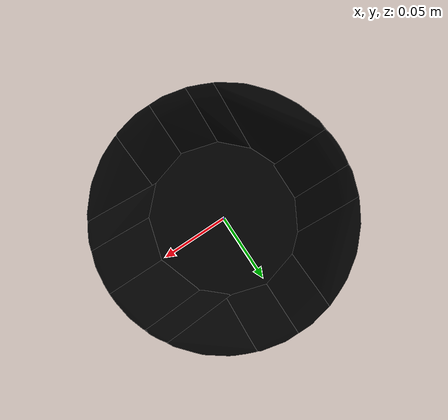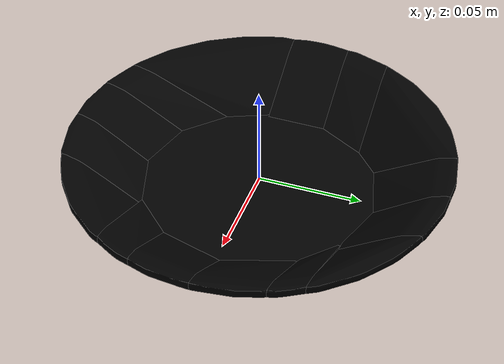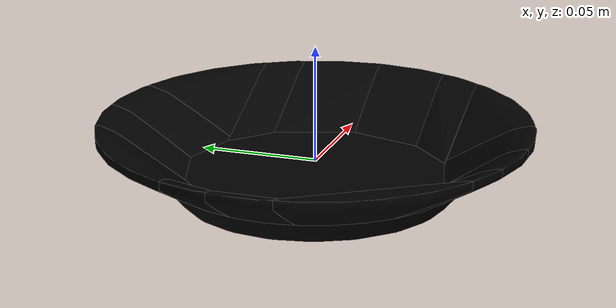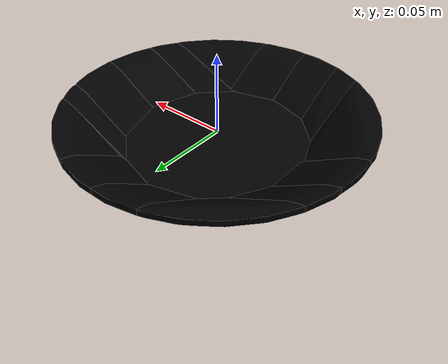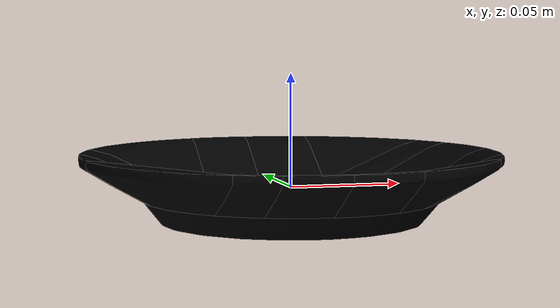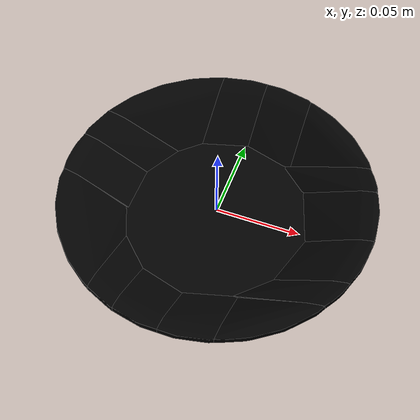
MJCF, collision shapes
<mujoco model="plate_33">
  <asset>
    <mesh file="visual/model_normalized_0.obj" name="model_normalized_0_vis" scale="0.185 0.185 0.185" refquat="1.0 0.0 0.0 0.0" />
    <texture type="2d" name="image0" file="visual/image0.png" />
    <material name="aiStandardSurface1SG.001" texture="image0" specular="0.5" shininess="0.908084069" />
    <mesh file="collision/model_collision_0.obj" name="model_collision_0" scale="0.185 0.185 0.185" refquat="1.0 0.0 0.0 0.0" />
    <mesh file="collision/model_collision_1.obj" name="model_collision_1" scale="0.185 0.185 0.185" refquat="1.0 0.0 0.0 0.0" />
    <mesh file="collision/model_collision_2.obj" name="model_collision_2" scale="0.185 0.185 0.185" refquat="1.0 0.0 0.0 0.0" />
    <mesh file="collision/model_collision_3.obj" name="model_collision_3" scale="0.185 0.185 0.185" refquat="1.0 0.0 0.0 0.0" />
    <mesh file="collision/model_collision_4.obj" name="model_collision_4" scale="0.185 0.185 0.185" refquat="1.0 0.0 0.0 0.0" />
    <mesh file="collision/model_collision_5.obj" name="model_collision_5" scale="0.185 0.185 0.185" refquat="1.0 0.0 0.0 0.0" />
    <mesh file="collision/model_collision_6.obj" name="model_collision_6" scale="0.185 0.185 0.185" refquat="1.0 0.0 0.0 0.0" />
    <mesh file="collision/model_collision_7.obj" name="model_collision_7" scale="0.185 0.185 0.185" refquat="1.0 0.0 0.0 0.0" />
    <mesh file="collision/model_collision_8.obj" name="model_collision_8" scale="0.185 0.185 0.185" refquat="1.0 0.0 0.0 0.0" />
    <mesh file="collision/model_collision_9.obj" name="model_collision_9" scale="0.185 0.185 0.185" refquat="1.0 0.0 0.0 0.0" />
    <mesh file="collision/model_collision_10.obj" name="model_collision_10" scale="0.185 0.185 0.185" refquat="1.0 0.0 0.0 0.0" />
    <mesh file="collision/model_collision_11.obj" name="model_collision_11" scale="0.185 0.185 0.185" refquat="1.0 0.0 0.0 0.0" />
    <mesh file="collision/model_collision_12.obj" name="model_collision_12" scale="0.185 0.185 0.185" refquat="1.0 0.0 0.0 0.0" />
    <mesh file="collision/model_collision_13.obj" name="model_collision_13" scale="0.185 0.185 0.185" refquat="1.0 0.0 0.0 0.0" />
    <mesh file="collision/model_collision_14.obj" name="model_collision_14" scale="0.185 0.185 0.185" refquat="1.0 0.0 0.0 0.0" />
    <mesh file="collision/model_collision_15.obj" name="model_collision_15" scale="0.185 0.185 0.185" refquat="1.0 0.0 0.0 0.0" />
  </asset>
  <default>
    <default class="region">
      <geom group="1" conaffinity="0" contype="0" rgba="0 1 0 0" />
    </default>
  </default>
  <worldbody>
    <body>
      <body name="object">
        <geom density="0" type="mesh" mesh="model_normalized_0_vis" conaffinity="0" contype="0" group="2" material="aiStandardSurface1SG.001" mass="0.18" />
        <geom class="region" name="reg_bbox" type="box" pos="-1.0624549999999483e-05 -0.00043115359999999656 0.0" size="0.09099536724999999 0.0906473767 0.0142602847" />
        <geom density="0" friction="1.2 0.1 0.001" type="mesh" group="3" rgba="0 0 0 0" mesh="model_collision_0"  condim="4"/>        <geom density="0" friction="1.2 0.1 0.001" type="mesh" group="3" rgba="0 0 0 0" mesh="model_collision_1"  condim="4"/>        <geom density="0" friction="1.2 0.1 0.001" type="mesh" group="3" rgba="0 0 0 0" mesh="model_collision_2"  condim="4"/>        <geom density="0" friction="1.2 0.1 0.001" type="mesh" group="3" rgba="0 0 0 0" mesh="model_collision_3"  condim="4"/>        <geom density="0" friction="1.2 0.1 0.001" type="mesh" group="3" rgba="0 0 0 0" mesh="model_collision_4"  condim="4"/>        <geom density="0" friction="1.2 0.1 0.001" type="mesh" group="3" rgba="0 0 0 0" mesh="model_collision_5"  condim="4"/>        <geom density="0" friction="1.2 0.1 0.001" type="mesh" group="3" rgba="0 0 0 0" mesh="model_collision_6"  condim="4"/>        <geom density="0" friction="1.2 0.1 0.001" type="mesh" group="3" rgba="0 0 0 0" mesh="model_collision_7"  condim="4"/>        <geom density="0" friction="1.2 0.1 0.001" type="mesh" group="3" rgba="0 0 0 0" mesh="model_collision_8"  condim="4"/>        <geom density="0" friction="1.2 0.1 0.001" type="mesh" group="3" rgba="0 0 0 0" mesh="model_collision_9"  condim="4"/>        <geom density="0" friction="1.2 0.1 0.001" type="mesh" group="3" rgba="0 0 0 0" mesh="model_collision_10"  condim="4"/>        <geom density="0" friction="1.2 0.1 0.001" type="mesh" group="3" rgba="0 0 0 0" mesh="model_collision_11"  condim="4"/>        <geom density="0" friction="1.2 0.1 0.001" type="mesh" group="3" rgba="0 0 0 0" mesh="model_collision_12"  condim="4"/>        <geom density="0" friction="1.2 0.1 0.001" type="mesh" group="3" rgba="0 0 0 0" mesh="model_collision_13"  condim="4"/>        <geom density="0" friction="1.2 0.1 0.001" type="mesh" group="3" rgba="0 0 0 0" mesh="model_collision_14"  condim="4"/>        <geom density="0" friction="1.2 0.1 0.001" type="mesh" group="3" rgba="0 0 0 0" mesh="model_collision_15"  condim="4"/>      </body>
    </body>
  </worldbody>
</mujoco>
